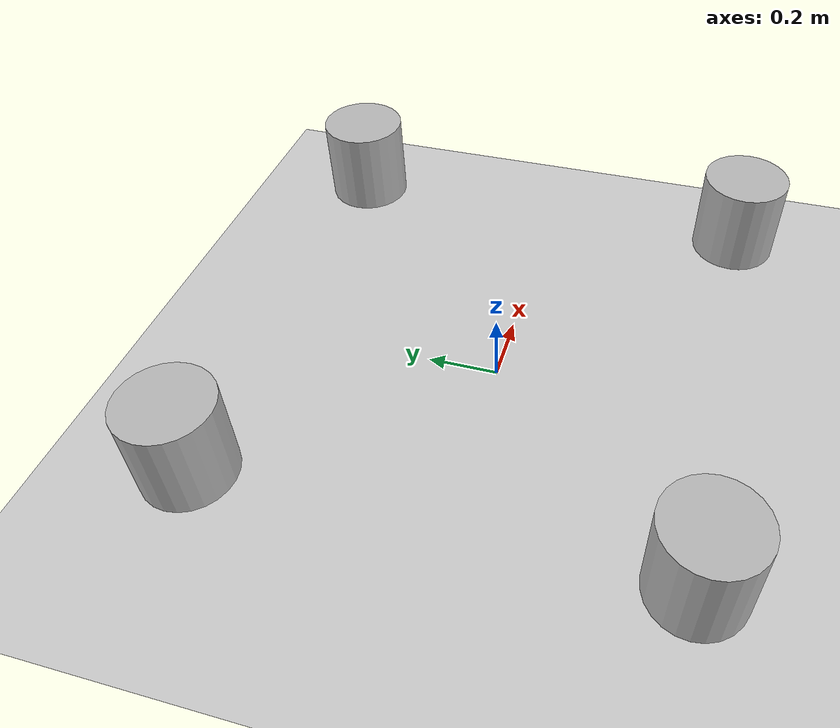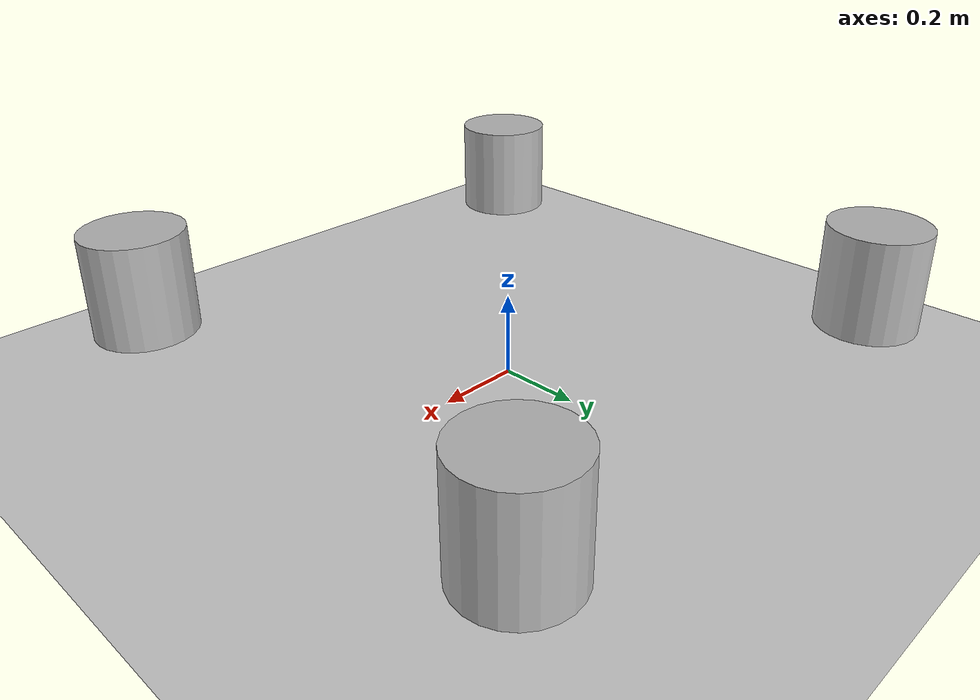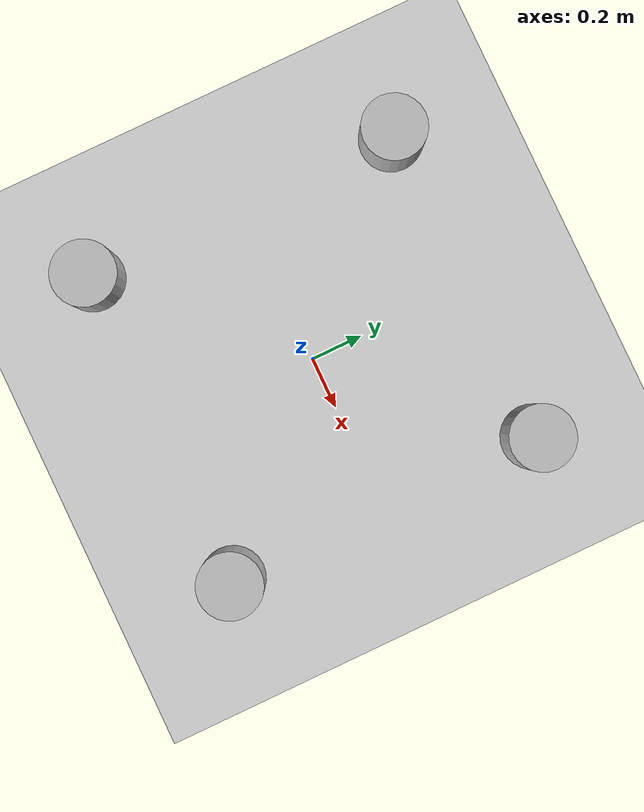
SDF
<sdf version='1.4'>
  <world name='default'>
    <!-- A global light source -->
    <include>
      <uri>model://sun</uri>
    </include>

    <!-- A ground plane -->
    <include>
      <uri>model://ground_plane</uri>
    </include>

    <physics type="ode">
      <real_time_update_rate>2000.0</real_time_update_rate>
      <max_step_size>0.001</max_step_size>
      <real_time_factor>1</real_time_factor>
      <ode>
        <solver>
          <type>quick</type>
          <iters>150</iters>
          <precon_iters>0</precon_iters>
          <sor>1.400000</sor>
          <use_dynamic_moi_rescaling>1</use_dynamic_moi_rescaling>
        </solver>
        <constraints>
          <cfm>0.00001</cfm>
          <erp>0.2</erp>
          <contact_max_correcting_vel>2000.000000</contact_max_correcting_vel>
          <contact_surface_layer>0.01000</contact_surface_layer>
        </constraints>
      </ode>
    </physics>

    <!-- Load model -->

    <!-- load new model-->
    <model name="obstacle_1">
      <pose>-0.6 -0.6 0.25 0 0 0</pose>
      <link name="link">
        <collision name="collision">
          <geometry>
            <cylinder>
              <radius>0.12</radius>
              <length>0.25</length>
            </cylinder>
          </geometry>
        </collision>

        <visual name="visual">
          <geometry>
            <cylinder>
              <radius>0.12</radius>
              <length>0.25</length>
            </cylinder>
          </geometry>
        </visual>
      </link>
    </model>

    <model name="obstacle_2">
      <pose>-0.6 0.6 0.25 0 0 0</pose>
      <link name="link">
        <collision name="collision">
          <geometry>
            <cylinder>
              <radius>0.12</radius>
              <length>0.25</length>
            </cylinder>
          </geometry>
        </collision>

        <visual name="visual">
          <geometry>
            <cylinder>
              <radius>0.12</radius>
              <length>0.25</length>
            </cylinder>
          </geometry>
        </visual>
      </link>
    </model>

    <model name="obstacle_3">
      <pose>0.6 -0.6 0.25 0 0 0</pose>
      <link name="link">
        <collision name="collision">
          <geometry>
            <cylinder>
              <radius>0.12</radius>
              <length>0.25</length>
            </cylinder>
          </geometry>
        </collision>

        <visual name="visual">
          <geometry>
            <cylinder>
              <radius>0.12</radius>
              <length>0.25</length>
            </cylinder>
          </geometry>
        </visual>
      </link>
    </model>

    <model name="obstacle_4">
      <pose>0.6 0.6 0.25 0 0 0</pose>
      <link name="link">
        <collision name="collision">
          <geometry>
            <cylinder>
              <radius>0.12</radius>
              <length>0.25</length>
            </cylinder>
          </geometry>
        </collision>

        <visual name="visual">
          <geometry>
            <cylinder>
              <radius>0.12</radius>
              <length>0.25</length>
            </cylinder>
          </geometry>
        </visual>
        </link>
      <plugin name="obstacle_2" filename="libobstacle_2.so"/>
    </model>

    <scene>
      <ambient>0.4 0.4 0.4 1</ambient>
      <background>0.7 0.7 0.7 1</background>
      <shadows>false</shadows>
    </scene>

    <gui fullscreen='0'>
      <camera name='user_camera'>
        <pose>0.0 0.0 17.0 0 1.5708 0</pose>
        <view_controller>orbit</view_controller>
      </camera>
    </gui>
  </world>
</sdf>
